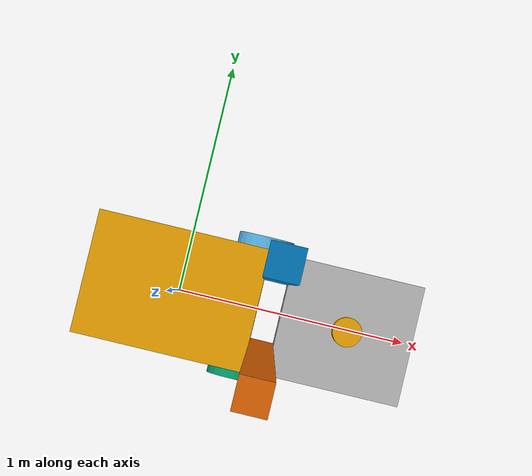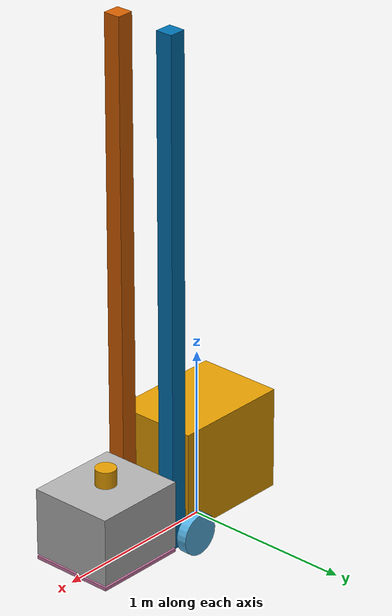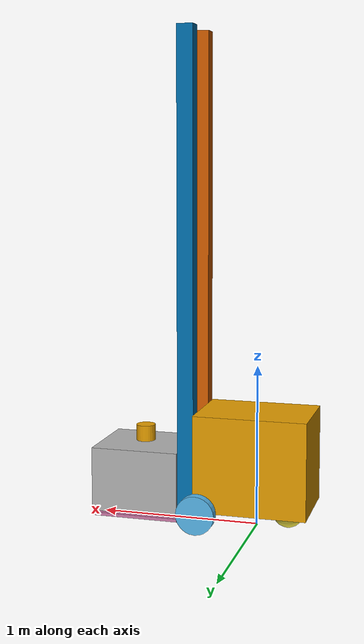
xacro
<?xml version="1.0"?>

<robot name="forklift"  xmlns:xacro="http://www.ros.org/wiki/xacro">
<xacro:include filename="$(find my_urdf)/urdf/joints_links.xacro"/>
<xacro:include filename="$(find my_urdf)/urdf/forklift.plugin.xacro"/>

<!-- chassis properties-->
<xacro:property name="cx" value="0.7"/>     height=20.5cm
<xacro:property name="cy" value="0.5"/>     length=41cm
<xacro:property name="cz" value="0.6"/>     width=41cm
<xacro:property name="cm" value="30"/>      weight=13.8kg

<!-- wheel properties-->
<xacro:property name="wh" value="0.06"/>  weight=1100gm
<xacro:property name="wr" value="0.12"/>   height=3cm
<xacro:property name="wm" value="0.7"/>
<!-- rod properties-->
<xacro:property name="rx" value="0.1"/>       weight=230gm
<xacro:property name="ry" value="0.1"/>       width=18.5cm
<xacro:property name="rz" value="3.0"/>       length=3cm
<xacro:property name="rm" value="5"/>         height=4mm

<!-- lift properties-->
<xacro:property name="lx" value="0.55"/>
<xacro:property name="ly" value="0.5"/>        distance btw forks=11.5(internally)
<xacro:property name="lz" value="0.02"/>
<xacro:property name="lm" value="2"/>

<!-- pull_mech_v properties-->
<xacro:property name="vpx" value="0.08"/>
<xacro:property name="vpy" value="0.06"/>
<xacro:property name="vpz" value="0.24"/>
<xacro:property name="vpm" value="0.5"/>

<!-- pull_mech_h properties-->
<xacro:property name="hph" value="0.15"/>
<xacro:property name="hpr" value="0.03"/>
<xacro:property name="hpm" value="0.5"/>

<!-- load properties-->
<xacro:property name="lox" value="0.55"/>
<xacro:property name="loy" value="0.5"/>
<xacro:property name="loz" value="0.4"/>
<xacro:property name="lom" value="5"/>

<!-- lazer_scanner properties-->
<xacro:property name="lsh" value="0.1"/>
<xacro:property name="lsr" value="0.06"/>
<xacro:property name="lsm" value="0.7"/>

<m_box name="chassis" size="${cx} ${cy} ${cz}" origin_rpy="0.0 0.0 0.0" origin_xyz="0.0 0.0 0.42"
        mass="${cm}"
        ixx="${cm*(cz*cz+cy*cy)/12}" ixy="0" ixz="0"
        iyy="${cm*(cx*cx+cz*cz)/12}" iyz="0"
        izz="${cm*(cy*cy+cx*cx)/12}"/>

<m_cylinder name="rf_wheel" length="${wh}" radius="${wr}" origin_rpy="1.57 0.0 0.0" origin_xyz="0.0 0.0 0.0"
             mass="${wm}"
              ixx="${wm*(3*wr*wr+wh*wh)/12}" ixy="0" ixz="0"
              iyy="${wm*(3*wr*wr+wh*wh)/12}" iyz="0"
              izz="${(wm*wr*wr)/2}"/>

<c_joint name="chassis_to_rf_wheel" type="continuous" origin_xyz="0.32 0.28 0.12" origin_rpy="0.0 0.0 0.0"
     axis_xyz="0 1 0" parent="chassis" child="rf_wheel" />

    <transmission name="trans_chassis_to_rf_wheel">
      <type>transmission_interface/SimpleTransmission</type>
      <joint name="chassis_to_rf_wheel">
        <hardwareInterface>hardware_interface/VelocityJointInterface</hardwareInterface>
      </joint>
      <actuator name="motor_chassis_to_rf_wheel">
        <hardwareInterface>hardware_interface/EffortJointInterface</hardwareInterface>
        <mechanicalReduction>1</mechanicalReduction>
      </actuator>
    </transmission>

<m_cylinder name="lf_wheel" length="${wh}" radius="${wr}" origin_rpy="1.57 0.0 0.0" origin_xyz="0.0 0.0 0.0"
             mass="${wm}"
              ixx="${wm*(3*wr*wr+wh*wh)/12}" ixy="0" ixz="0"
              iyy="${wm*(3*wr*wr+wh*wh)/12}" iyz="0"
              izz="${(wm*wr*wr)/2}"/>

    <c_joint name="chassis_to_lf_wheel" type="continuous" origin_xyz="0.32 -0.28 0.12" origin_rpy="0.0 0.0 0.0"
         axis_xyz="0 1 0" parent="chassis" child="lf_wheel"/>

    <transmission name="trans_chassis_to_lf_wheel">
      <type>transmission_interface/SimpleTransmission</type>
      <joint name="chassis_to_lf_wheel">
        <hardwareInterface>hardware_interface/VelocityJointInterface</hardwareInterface>
      </joint>
      <actuator name="motor_chassis_to_lf_wheel">
        <hardwareInterface>hardware_interface/EffortJointInterface</hardwareInterface>
        <mechanicalReduction>1</mechanicalReduction>
      </actuator>
    </transmission>

<link name="caster">
        <inertial>
        <mass value="0.5" />
        <origin rpy="0.0 0.0 0.0" xyz="0.0 0.0 0.0" />
        <inertia ixx="0.001" ixy="0.0" ixz="0.0" iyy="0.001" iyz="0.0" izz="0.001" />
        </inertial>
        <collision>
        <origin rpy="0.0 0.0 0.0" xyz="0.0 0.0 0.0" />
        <geometry>
          <sphere radius="0.1" />
        </geometry>
      </collision>
        <visual>
            <geometry>
                <sphere radius="0.1"/>
            </geometry>
        </visual>
    </link>

   <f_joint name="chassis_to_caster" type="fixed" origin_xyz="-0.2 0.0 0.1" origin_rpy="0.0 0.0 0.0"
          parent="chassis" child="caster"/>

    <m_box name="r_rod" size="${rx} ${ry} ${rz}" origin_rpy="0.0 0.0 0.0" origin_xyz="0.0 0.0 1.5"
        mass="${rm}"
        ixx="${rm*(rz*rz+ry*ry)/12}" ixy="0" ixz="0"
        iyy="${rm*(rx*rx+rz*rz)/12}" iyz="0"
        izz="${rm*(ry*ry+rx*rx)/12}"/>

    <f_joint name="chassis_to_r_rod" type="fixed" origin_xyz="0.4 0.18 0.05" origin_rpy="0.0 0.0 0.0"
          parent="chassis" child="r_rod"/>

     <m_box name="l_rod" size="${rx} ${ry} ${rz}" origin_rpy="0.0 0.0 0.0" origin_xyz="0.0 0.0 1.5"
        mass="${rm}"
        ixx="${rm*(rz*rz+ry*ry)/12}" ixy="0" ixz="0"
        iyy="${rm*(rx*rx+rz*rz)/12}" iyz="0"
        izz="${rm*(ry*ry+rx*rx)/12}"/>

    <f_joint name="chassis_to_l_rod" type="fixed" origin_xyz="0.4 -0.18 0.05" origin_rpy="0.0 0.0 0.0"
          parent="chassis" child="l_rod"/>

    <m_box name="lift" size="${lx} ${ly} ${lz}" origin_rpy="0.0 0.0 0.0" origin_xyz="0.0 0.0 0.0"
        mass="${lm}"
        ixx="${lm*(lz*lz+ly*ly)/12}" ixy="0" ixz="0"
        iyy="${lm*(lx*lx+lz*lz)/12}" iyz="0"
        izz="${lm*(ly*ly+lx*lx)/12}"/>

    <m_joint name="chassis_to_lift" type="prismatic" origin_xyz="${(rx+lx/2+cx/2)} 0 0.06" origin_rpy="0.0 0.0 0.0"
         axis_xyz="0 0 1" parent="chassis" child="lift" limit_e="1000.0" limit_v="0.5"
         limit_l="0" limit_u="0.2"/>

    <transmission name="trans_chassis_to_lift">
      <type>transmission_interface/SimpleTransmission</type>
      <joint name="chassis_to_lift">
        <hardwareInterface>hardware_interface/EffortJointInterface</hardwareInterface>
      </joint>
      <actuator name="motor_chassis_to_lift">
        <hardwareInterface>hardware_interface/EffortJointInterface</hardwareInterface>
        <mechanicalReduction>1</mechanicalReduction>
      </actuator>
    </transmission>

    <m_box name="load" size="${lox} ${loy} ${loz}" origin_rpy="0.0 0.0 0.0" origin_xyz="0.0 0.0 ${loz/2+lz/2}"
        mass="${lom}"
        ixx="${lom*(loz*loz+loy*loy)/12}" ixy="0" ixz="0"
        iyy="${lom*(lox*lox+loz*loz)/12}" iyz="0"
        izz="${lom*(loy*loy+lox*lox)/12}"/>

    <f_joint name="load_to_lift" type="fixed" origin_xyz="0.0 0.0 0.01" origin_rpy="0.0 0.0 0.0"
          parent="lift" child="load"/>

      <m_cylinder name="laser_scan" length="${lsh}" radius="${lsr}" origin_rpy="0.0 0.0 0.0" origin_xyz="0 0 0.05"
             mass="${lsm}"
              ixx="${lsm*(3*lsr*lsr+lsh*lsh)/12}" ixy="0" ixz="0"
              iyy="${lsm*(3*lsr*lsr+lsh*lsh)/12}" iyz="0"
              izz="${(hpm*hpr*hpr)/2}"/>
      <f_joint name="laser_scanner_chassis" type="fixed" origin_xyz="0 0 ${lz+loz}" origin_rpy="0.0 0.0 0.0"
             parent="load" child="laser_scan"/>

    <gazebo>
    <plugin name="gazebo_ros_plugin" filename="libgazebo_ros_control.so">
    <robotSimType>gazebo_ros_control/DefaultRobotHWSim</robotSimType>
    <legacyModeNS>true</legacyModeNS>
    </plugin>
  </gazebo>

</robot>

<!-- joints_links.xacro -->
<robot xmlns:xacro="http://www.ros.org/wiki/xacro">

 <xacro:macro name="m_joint" params="name type axis_xyz origin_rpy origin_xyz parent child limit_e limit_l limit_u limit_v">
    <joint name="${name}" type="${type}">
      <axis xyz="${axis_xyz}" />
      <limit effort="${limit_e}" lower="${limit_l}" upper="${limit_u}" velocity="${limit_v}" />
      <origin rpy="${origin_rpy}" xyz="${origin_xyz}" />
      <parent link="${parent}" />
      <child link="${child}" />
    </joint>
    </xacro:macro>

  <xacro:macro name="f_joint" params="name type origin_rpy origin_xyz parent child ">
    <joint name="${name}" type="${type}">
        <origin xyz="${origin_xyz}" rpy="${origin_rpy}"/>
        <parent link="${parent}"/>
        <child link="${child}"/>
    </joint>
  </xacro:macro>

  <xacro:macro name="c_joint" params="name type origin_rpy origin_xyz parent child axis_xyz ">
    <joint name="${name}" type="${type}">
        <axis xyz="${axis_xyz}"/>
        <origin xyz="${origin_xyz}" rpy="${origin_rpy}"/>
        <parent link="${parent}"/>
        <child link="${child}"/>
    </joint>
  </xacro:macro>

  <xacro:macro name="m_box" params="name origin_xyz origin_rpy size mass ixx ixy ixz iyy iyz izz">
    <link name="${name}">
      <inertial>
        <mass value="${mass}" />
        <origin rpy="${origin_rpy}" xyz="${origin_xyz}" />
        <inertia ixx="${ixx}" ixy="${ixy}" ixz="${ixz}" iyy="${iyy}" iyz="${iyz}" izz="${izz}" />
      </inertial>
      <collision>
        <origin rpy="${origin_rpy}" xyz="${origin_xyz}" />
        <geometry>
          <box size="${size}" />
        </geometry>
      </collision>
      <visual>
        <origin rpy="${origin_rpy}" xyz="${origin_xyz}" />
        <geometry>
          <box size="${size}" />
        </geometry>
      </visual>
    </link>
  </xacro:macro>

<xacro:macro name="m_cylinder" params="name origin_xyz origin_rpy radius length mass ixx ixy ixz iyy iyz izz">
 <link name="${name}">
      <inertial>
        <mass value="${mass}" />
        <origin rpy="${origin_rpy}" xyz="${origin_xyz}" />
        <inertia ixx="${ixx}" ixy="${ixy}" ixz="${ixz}" iyy="${iyy}" iyz="${iyz}" izz="${izz}" />
      </inertial>
      <collision>
        <origin rpy="${origin_rpy}" xyz="${origin_xyz}" />
        <geometry>
          <cylinder radius="${radius}" length="${length}" />
        </geometry>
      </collision>
      <visual>
        <origin rpy="${origin_rpy}" xyz="${origin_xyz}" />
        <geometry>
          <cylinder radius="${radius}" length="${length}" />
        </geometry>
      </visual>
    </link>
 </xacro:macro>
</robot>
